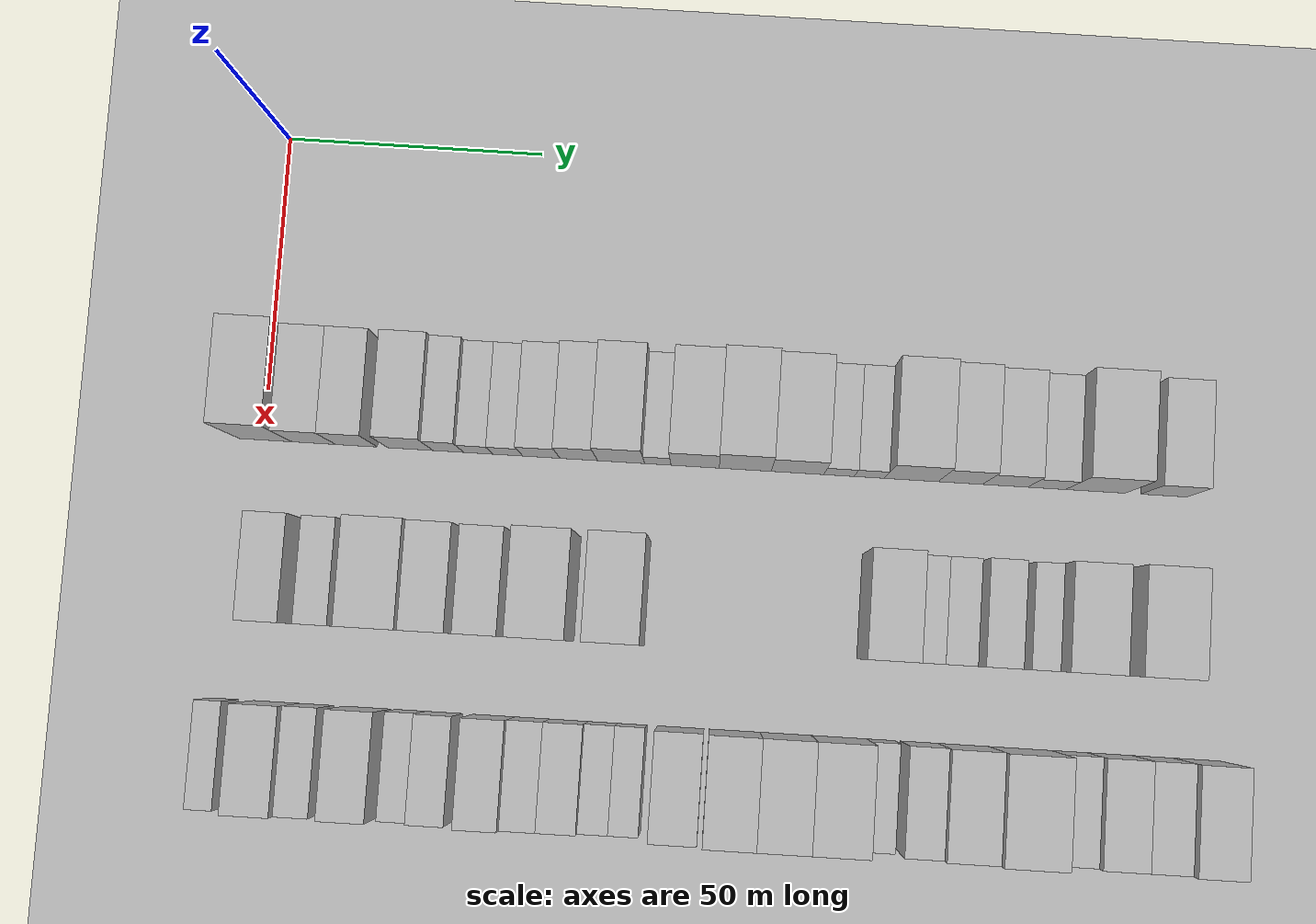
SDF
<sdf version="1.6">
 <world name="default">
  <include><name>ground_plane_1</name><uri>model://HANNAS_ground_plane</uri></include>
  <include>
   <name>ground_plane_2</name>
   <uri>model://HANNAS_ground_plane</uri>
   <pose>100 0 0  0 0 0</pose>
  </include>
  <model name="building_45">
   <static>1</static>
   <pose>50.0000 0.6288 0 0.000000 0.000000 0.000000</pose>
   <link name="link">
    <pose>0 0 12.00 0 0 0</pose>
    <collision name="collision"><geometry><box><size>20.0000 10.2893 24.0000</size></box></geometry></collision>
    <visual name="visual">
     <cast_shadows>0</cast_shadows>
     <geometry><box><size>20.0000 10.2893 24.0000</size></box></geometry>
     <material>
      <script>
       <uri>model://HANNAS_wall/materials/scripts</uri>
       <uri>model://HANNAS_wall/materials/textures</uri>
       <name>vrc/HANNAS_wall</name>
      </script>
     </material>
    </visual>
   </link>
  </model>
  <model name="building_46">
   <static>1</static>
   <pose>50.0000 10.0186 0 0.000000 0.000000 0.000000</pose>
   <link name="link">
    <pose>0 0 9.00 0 0 0</pose>
    <collision name="collision"><geometry><box><size>20.0000 8.4903 18.0000</size></box></geometry></collision>
    <visual name="visual">
     <cast_shadows>0</cast_shadows>
     <geometry><box><size>20.0000 8.4903 18.0000</size></box></geometry>
     <material>
      <script>
       <uri>model://HANNAS_wall/materials/scripts</uri>
       <uri>model://HANNAS_wall/materials/textures</uri>
       <name>vrc/HANNAS_wall</name>
      </script>
     </material>
    </visual>
   </link>
  </model>
  <model name="building_47">
   <static>1</static>
   <pose>50.0000 18.2953 0 0.000000 0.000000 0.000000</pose>
   <link name="link">
    <pose>0 0 9.00 0 0 0</pose>
    <collision name="collision"><geometry><box><size>20.0000 8.0630 18.0000</size></box></geometry></collision>
    <visual name="visual">
     <cast_shadows>0</cast_shadows>
     <geometry><box><size>20.0000 8.0630 18.0000</size></box></geometry>
     <material>
      <script>
       <uri>model://HANNAS_wall/materials/scripts</uri>
       <uri>model://HANNAS_wall/materials/textures</uri>
       <name>vrc/HANNAS_wall</name>
      </script>
     </material>
    </visual>
   </link>
  </model>
  <model name="building_48">
   <static>1</static>
   <pose>50.0000 28.7186 0 0.000000 0.000000 0.000000</pose>
   <link name="link">
    <pose>0 0 9.00 0 0 0</pose>
    <collision name="collision"><geometry><box><size>20.0000 8.7836 18.0000</size></box></geometry></collision>
    <visual name="visual">
     <cast_shadows>0</cast_shadows>
     <geometry><box><size>20.0000 8.7836 18.0000</size></box></geometry>
     <material>
      <script>
       <uri>model://HANNAS_wall/materials/scripts</uri>
       <uri>model://HANNAS_wall/materials/textures</uri>
       <name>vrc/HANNAS_wall</name>
      </script>
     </material>
    </visual>
   </link>
  </model>
  <model name="building_49">
   <static>1</static>
   <pose>50.0000 36.1253 0 0.000000 0.000000 0.000000</pose>
   <link name="link">
    <pose>0 0 7.50 0 0 0</pose>
    <collision name="collision"><geometry><box><size>20.0000 6.0298 15.0000</size></box></geometry></collision>
    <visual name="visual">
     <cast_shadows>0</cast_shadows>
     <geometry><box><size>20.0000 6.0298 15.0000</size></box></geometry>
     <material>
      <script>
       <uri>model://HANNAS_wall/materials/scripts</uri>
       <uri>model://HANNAS_wall/materials/textures</uri>
       <name>vrc/HANNAS_wall</name>
      </script>
     </material>
    </visual>
   </link>
  </model>
  <model name="building_50">
   <static>1</static>
   <pose>50.0000 41.9829 0 0.000000 0.000000 0.000000</pose>
   <link name="link">
    <pose>0 0 6.00 0 0 0</pose>
    <collision name="collision"><geometry><box><size>20.0000 5.6853 12.0000</size></box></geometry></collision>
    <visual name="visual">
     <cast_shadows>0</cast_shadows>
     <geometry><box><size>20.0000 5.6853 12.0000</size></box></geometry>
     <material>
      <script>
       <uri>model://HANNAS_wall/materials/scripts</uri>
       <uri>model://HANNAS_wall/materials/textures</uri>
       <name>vrc/HANNAS_wall</name>
      </script>
     </material>
    </visual>
   </link>
  </model>
  <model name="building_51">
   <static>1</static>
   <pose>50.0000 47.6928 0 0.000000 0.000000 0.000000</pose>
   <link name="link">
    <pose>0 0 6.00 0 0 0</pose>
    <collision name="collision"><geometry><box><size>20.0000 5.7346 12.0000</size></box></geometry></collision>
    <visual name="visual">
     <cast_shadows>0</cast_shadows>
     <geometry><box><size>20.0000 5.7346 12.0000</size></box></geometry>
     <material>
      <script>
       <uri>model://HANNAS_wall/materials/scripts</uri>
       <uri>model://HANNAS_wall/materials/textures</uri>
       <name>vrc/HANNAS_wall</name>
      </script>
     </material>
    </visual>
   </link>
  </model>
  <model name="building_52">
   <static>1</static>
   <pose>50.0000 54.1982 0 0.000000 0.000000 0.000000</pose>
   <link name="link">
    <pose>0 0 7.50 0 0 0</pose>
    <collision name="collision"><geometry><box><size>20.0000 7.2763 15.0000</size></box></geometry></collision>
    <visual name="visual">
     <cast_shadows>0</cast_shadows>
     <geometry><box><size>20.0000 7.2763 15.0000</size></box></geometry>
     <material>
      <script>
       <uri>model://HANNAS_wall/materials/scripts</uri>
       <uri>model://HANNAS_wall/materials/textures</uri>
       <name>vrc/HANNAS_wall</name>
      </script>
     </material>
    </visual>
   </link>
  </model>
  <model name="building_53">
   <static>1</static>
   <pose>50.0000 61.4777 0 0.000000 0.000000 0.000000</pose>
   <link name="link">
    <pose>0 0 9.00 0 0 0</pose>
    <collision name="collision"><geometry><box><size>20.0000 7.2826 18.0000</size></box></geometry></collision>
    <visual name="visual">
     <cast_shadows>0</cast_shadows>
     <geometry><box><size>20.0000 7.2826 18.0000</size></box></geometry>
     <material>
      <script>
       <uri>model://HANNAS_wall/materials/scripts</uri>
       <uri>model://HANNAS_wall/materials/textures</uri>
       <name>vrc/HANNAS_wall</name>
      </script>
     </material>
    </visual>
   </link>
  </model>
  <model name="building_54">
   <static>1</static>
   <pose>50.0000 69.6725 0 0.000000 0.000000 0.000000</pose>
   <link name="link">
    <pose>0 0 10.50 0 0 0</pose>
    <collision name="collision"><geometry><box><size>20.0000 9.1071 21.0000</size></box></geometry></collision>
    <visual name="visual">
     <cast_shadows>0</cast_shadows>
     <geometry><box><size>20.0000 9.1071 21.0000</size></box></geometry>
     <material>
      <script>
       <uri>model://HANNAS_wall/materials/scripts</uri>
       <uri>model://HANNAS_wall/materials/textures</uri>
       <name>vrc/HANNAS_wall</name>
      </script>
     </material>
    </visual>
   </link>
  </model>
  <model name="building_55">
   <static>1</static>
   <pose>50.0000 76.7861 0 0.000000 0.000000 0.000000</pose>
   <link name="link">
    <pose>0 0 6.00 0 0 0</pose>
    <collision name="collision"><geometry><box><size>20.0000 5.1200 12.0000</size></box></geometry></collision>
    <visual name="visual">
     <cast_shadows>0</cast_shadows>
     <geometry><box><size>20.0000 5.1200 12.0000</size></box></geometry>
     <material>
      <script>
       <uri>model://HANNAS_wall/materials/scripts</uri>
       <uri>model://HANNAS_wall/materials/textures</uri>
       <name>vrc/HANNAS_wall</name>
      </script>
     </material>
    </visual>
   </link>
  </model>
  <model name="building_56">
   <static>1</static>
   <pose>50.0000 84.0161 0 0.000000 0.000000 0.000000</pose>
   <link name="link">
    <pose>0 0 10.50 0 0 0</pose>
    <collision name="collision"><geometry><box><size>20.0000 9.3400 21.0000</size></box></geometry></collision>
    <visual name="visual">
     <cast_shadows>0</cast_shadows>
     <geometry><box><size>20.0000 9.3400 21.0000</size></box></geometry>
     <material>
      <script>
       <uri>model://HANNAS_wall/materials/scripts</uri>
       <uri>model://HANNAS_wall/materials/textures</uri>
       <name>vrc/HANNAS_wall</name>
      </script>
     </material>
    </visual>
   </link>
  </model>
  <model name="building_57">
   <static>1</static>
   <pose>50.0000 93.7033 0 0.000000 0.000000 0.000000</pose>
   <link name="link">
    <pose>0 0 12.00 0 0 0</pose>
    <collision name="collision"><geometry><box><size>20.0000 10.0343 24.0000</size></box></geometry></collision>
    <visual name="visual">
     <cast_shadows>0</cast_shadows>
     <geometry><box><size>20.0000 10.0343 24.0000</size></box></geometry>
     <material>
      <script>
       <uri>model://HANNAS_wall/materials/scripts</uri>
       <uri>model://HANNAS_wall/materials/textures</uri>
       <name>vrc/HANNAS_wall</name>
      </script>
     </material>
    </visual>
   </link>
  </model>
  <model name="building_58">
   <static>1</static>
   <pose>50.0000 103.8133 0 0.000000 0.000000 0.000000</pose>
   <link name="link">
    <pose>0 0 10.50 0 0 0</pose>
    <collision name="collision"><geometry><box><size>20.0000 10.1856 21.0000</size></box></geometry></collision>
    <visual name="visual">
     <cast_shadows>0</cast_shadows>
     <geometry><box><size>20.0000 10.1856 21.0000</size></box></geometry>
     <material>
      <script>
       <uri>model://HANNAS_wall/materials/scripts</uri>
       <uri>model://HANNAS_wall/materials/textures</uri>
       <name>vrc/HANNAS_wall</name>
      </script>
     </material>
    </visual>
   </link>
  </model>
  <model name="building_59">
   <static>1</static>
   <pose>50.0000 111.8487 0 0.000000 0.000000 0.000000</pose>
   <link name="link">
    <pose>0 0 6.00 0 0 0</pose>
    <collision name="collision"><geometry><box><size>20.0000 5.8854 12.0000</size></box></geometry></collision>
    <visual name="visual">
     <cast_shadows>0</cast_shadows>
     <geometry><box><size>20.0000 5.8854 12.0000</size></box></geometry>
     <material>
      <script>
       <uri>model://HANNAS_wall/materials/scripts</uri>
       <uri>model://HANNAS_wall/materials/textures</uri>
       <name>vrc/HANNAS_wall</name>
      </script>
     </material>
    </visual>
   </link>
  </model>
  <model name="building_60">
   <static>1</static>
   <pose>50.0000 117.6691 0 0.000000 0.000000 0.000000</pose>
   <link name="link">
    <pose>0 0 6.00 0 0 0</pose>
    <collision name="collision"><geometry><box><size>20.0000 5.7554 12.0000</size></box></geometry></collision>
    <visual name="visual">
     <cast_shadows>0</cast_shadows>
     <geometry><box><size>20.0000 5.7554 12.0000</size></box></geometry>
     <material>
      <script>
       <uri>model://HANNAS_wall/materials/scripts</uri>
       <uri>model://HANNAS_wall/materials/textures</uri>
       <name>vrc/HANNAS_wall</name>
      </script>
     </material>
    </visual>
   </link>
  </model>
  <model name="building_61">
   <static>1</static>
   <pose>50.0000 125.8021 0 0.000000 0.000000 0.000000</pose>
   <link name="link">
    <pose>0 0 12.00 0 0 0</pose>
    <collision name="collision"><geometry><box><size>20.0000 10.5105 24.0000</size></box></geometry></collision>
    <visual name="visual">
     <cast_shadows>0</cast_shadows>
     <geometry><box><size>20.0000 10.5105 24.0000</size></box></geometry>
     <material>
      <script>
       <uri>model://HANNAS_wall/materials/scripts</uri>
       <uri>model://HANNAS_wall/materials/textures</uri>
       <name>vrc/HANNAS_wall</name>
      </script>
     </material>
    </visual>
   </link>
  </model>
  <model name="building_62">
   <static>1</static>
   <pose>50.0000 135.3533 0 0.000000 0.000000 0.000000</pose>
   <link name="link">
    <pose>0 0 10.50 0 0 0</pose>
    <collision name="collision"><geometry><box><size>20.0000 8.5919 21.0000</size></box></geometry></collision>
    <visual name="visual">
     <cast_shadows>0</cast_shadows>
     <geometry><box><size>20.0000 8.5919 21.0000</size></box></geometry>
     <material>
      <script>
       <uri>model://HANNAS_wall/materials/scripts</uri>
       <uri>model://HANNAS_wall/materials/textures</uri>
       <name>vrc/HANNAS_wall</name>
      </script>
     </material>
    </visual>
   </link>
  </model>
  <model name="building_63">
   <static>1</static>
   <pose>50.0000 144.0137 0 0.000000 0.000000 0.000000</pose>
   <link name="link">
    <pose>0 0 9.00 0 0 0</pose>
    <collision name="collision"><geometry><box><size>20.0000 8.7290 18.0000</size></box></geometry></collision>
    <visual name="visual">
     <cast_shadows>0</cast_shadows>
     <geometry><box><size>20.0000 8.7290 18.0000</size></box></geometry>
     <material>
      <script>
       <uri>model://HANNAS_wall/materials/scripts</uri>
       <uri>model://HANNAS_wall/materials/textures</uri>
       <name>vrc/HANNAS_wall</name>
      </script>
     </material>
    </visual>
   </link>
  </model>
  <model name="building_64">
   <static>1</static>
   <pose>50.0000 152.0452 0 0.000000 0.000000 0.000000</pose>
   <link name="link">
    <pose>0 0 7.50 0 0 0</pose>
    <collision name="collision"><geometry><box><size>20.0000 7.3339 15.0000</size></box></geometry></collision>
    <visual name="visual">
     <cast_shadows>0</cast_shadows>
     <geometry><box><size>20.0000 7.3339 15.0000</size></box></geometry>
     <material>
      <script>
       <uri>model://HANNAS_wall/materials/scripts</uri>
       <uri>model://HANNAS_wall/materials/textures</uri>
       <name>vrc/HANNAS_wall</name>
      </script>
     </material>
    </visual>
   </link>
  </model>
  <model name="building_65">
   <static>1</static>
   <pose>50.0000 161.4899 0 0.000000 0.000000 0.000000</pose>
   <link name="link">
    <pose>0 0 12.00 0 0 0</pose>
    <collision name="collision"><geometry><box><size>20.0000 11.5554 24.0000</size></box></geometry></collision>
    <visual name="visual">
     <cast_shadows>0</cast_shadows>
     <geometry><box><size>20.0000 11.5554 24.0000</size></box></geometry>
     <material>
      <script>
       <uri>model://HANNAS_wall/materials/scripts</uri>
       <uri>model://HANNAS_wall/materials/textures</uri>
       <name>vrc/HANNAS_wall</name>
      </script>
     </material>
    </visual>
   </link>
  </model>
  <model name="building_66">
   <static>1</static>
   <pose>50.0000 174.6841 0 0.000000 0.000000 0.000000</pose>
   <link name="link">
    <pose>0 0 9.00 0 0 0</pose>
    <collision name="collision"><geometry><box><size>20.0000 8.8332 18.0000</size></box></geometry></collision>
    <visual name="visual">
     <cast_shadows>0</cast_shadows>
     <geometry><box><size>20.0000 8.8332 18.0000</size></box></geometry>
     <material>
      <script>
       <uri>model://HANNAS_wall/materials/scripts</uri>
       <uri>model://HANNAS_wall/materials/textures</uri>
       <name>vrc/HANNAS_wall</name>
      </script>
     </material>
    </visual>
   </link>
  </model>
  <model name="building_127">
   <static>1</static>
   <pose>85.0000 6.2034 0 0.000000 0.000000 0.000000</pose>
   <link name="link">
    <pose>0 0 9.00 0 0 0</pose>
    <collision name="collision"><geometry><box><size>20.0000 8.0025 18.0000</size></box></geometry></collision>
    <visual name="visual">
     <cast_shadows>0</cast_shadows>
     <geometry><box><size>20.0000 8.0025 18.0000</size></box></geometry>
     <material>
      <script>
       <uri>model://HANNAS_wall/materials/scripts</uri>
       <uri>model://HANNAS_wall/materials/textures</uri>
       <name>vrc/HANNAS_wall</name>
      </script>
     </material>
    </visual>
   </link>
  </model>
  <model name="building_128">
   <static>1</static>
   <pose>85.0000 15.3976 0 0.000000 0.000000 0.000000</pose>
   <link name="link">
    <pose>0 0 7.50 0 0 0</pose>
    <collision name="collision"><geometry><box><size>20.0000 6.3859 15.0000</size></box></geometry></collision>
    <visual name="visual">
     <cast_shadows>0</cast_shadows>
     <geometry><box><size>20.0000 6.3859 15.0000</size></box></geometry>
     <material>
      <script>
       <uri>model://HANNAS_wall/materials/scripts</uri>
       <uri>model://HANNAS_wall/materials/textures</uri>
       <name>vrc/HANNAS_wall</name>
      </script>
     </material>
    </visual>
   </link>
  </model>
  <model name="building_129">
   <static>1</static>
   <pose>85.0000 27.0782 0 0.000000 0.000000 0.000000</pose>
   <link name="link">
    <pose>0 0 12.00 0 0 0</pose>
    <collision name="collision"><geometry><box><size>20.0000 10.9752 24.0000</size></box></geometry></collision>
    <visual name="visual">
     <cast_shadows>0</cast_shadows>
     <geometry><box><size>20.0000 10.9752 24.0000</size></box></geometry>
     <material>
      <script>
       <uri>model://HANNAS_wall/materials/scripts</uri>
       <uri>model://HANNAS_wall/materials/textures</uri>
       <name>vrc/HANNAS_wall</name>
      </script>
     </material>
    </visual>
   </link>
  </model>
  <model name="building_130">
   <static>1</static>
   <pose>85.0000 36.7725 0 0.000000 0.000000 0.000000</pose>
   <link name="link">
    <pose>0 0 10.50 0 0 0</pose>
    <collision name="collision"><geometry><box><size>20.0000 8.4135 21.0000</size></box></geometry></collision>
    <visual name="visual">
     <cast_shadows>0</cast_shadows>
     <geometry><box><size>20.0000 8.4135 21.0000</size></box></geometry>
     <material>
      <script>
       <uri>model://HANNAS_wall/materials/scripts</uri>
       <uri>model://HANNAS_wall/materials/textures</uri>
       <name>vrc/HANNAS_wall</name>
      </script>
     </material>
    </visual>
   </link>
  </model>
  <model name="building_131">
   <static>1</static>
   <pose>85.0000 46.0508 0 0.000000 0.000000 0.000000</pose>
   <link name="link">
    <pose>0 0 9.00 0 0 0</pose>
    <collision name="collision"><geometry><box><size>20.0000 8.1430 18.0000</size></box></geometry></collision>
    <visual name="visual">
     <cast_shadows>0</cast_shadows>
     <geometry><box><size>20.0000 8.1430 18.0000</size></box></geometry>
     <material>
      <script>
       <uri>model://HANNAS_wall/materials/scripts</uri>
       <uri>model://HANNAS_wall/materials/textures</uri>
       <name>vrc/HANNAS_wall</name>
      </script>
     </material>
    </visual>
   </link>
  </model>
  <model name="building_132">
   <static>1</static>
   <pose>85.0000 57.5286 0 0.000000 0.000000 0.000000</pose>
   <link name="link">
    <pose>0 0 12.00 0 0 0</pose>
    <collision name="collision"><geometry><box><size>20.0000 10.8127 24.0000</size></box></geometry></collision>
    <visual name="visual">
     <cast_shadows>0</cast_shadows>
     <geometry><box><size>20.0000 10.8127 24.0000</size></box></geometry>
     <material>
      <script>
       <uri>model://HANNAS_wall/materials/scripts</uri>
       <uri>model://HANNAS_wall/materials/textures</uri>
       <name>vrc/HANNAS_wall</name>
      </script>
     </material>
    </visual>
   </link>
  </model>
  <model name="building_133">
   <static>1</static>
   <pose>85.0000 71.1728 0 0.000000 0.000000 0.000000</pose>
   <link name="link">
    <pose>0 0 12.00 0 0 0</pose>
    <collision name="collision"><geometry><box><size>20.0000 10.4758 24.0000</size></box></geometry></collision>
    <visual name="visual">
     <cast_shadows>0</cast_shadows>
     <geometry><box><size>20.0000 10.4758 24.0000</size></box></geometry>
     <material>
      <script>
       <uri>model://HANNAS_wall/materials/scripts</uri>
       <uri>model://HANNAS_wall/materials/textures</uri>
       <name>vrc/HANNAS_wall</name>
      </script>
     </material>
    </visual>
   </link>
  </model>
  <model name="building_134">
   <static>1</static>
   <pose>85.0000 122.0404 0 0.000000 0.000000 0.000000</pose>
   <link name="link">
    <pose>0 0 12.00 0 0 0</pose>
    <collision name="collision"><geometry><box><size>20.0000 9.7531 24.0000</size></box></geometry></collision>
    <visual name="visual">
     <cast_shadows>0</cast_shadows>
     <geometry><box><size>20.0000 9.7531 24.0000</size></box></geometry>
     <material>
      <script>
       <uri>model://HANNAS_wall/materials/scripts</uri>
       <uri>model://HANNAS_wall/materials/textures</uri>
       <name>vrc/HANNAS_wall</name>
      </script>
     </material>
    </visual>
   </link>
  </model>
  <model name="building_135">
   <static>1</static>
   <pose>85.0000 129.8178 0 0.000000 0.000000 0.000000</pose>
   <link name="link">
    <pose>0 0 6.00 0 0 0</pose>
    <collision name="collision"><geometry><box><size>20.0000 5.8017 12.0000</size></box></geometry></collision>
    <visual name="visual">
     <cast_shadows>0</cast_shadows>
     <geometry><box><size>20.0000 5.8017 12.0000</size></box></geometry>
     <material>
      <script>
       <uri>model://HANNAS_wall/materials/scripts</uri>
       <uri>model://HANNAS_wall/materials/textures</uri>
       <name>vrc/HANNAS_wall</name>
      </script>
     </material>
    </visual>
   </link>
  </model>
  <model name="building_136">
   <static>1</static>
   <pose>85.0000 135.7132 0 0.000000 0.000000 0.000000</pose>
   <link name="link">
    <pose>0 0 6.00 0 0 0</pose>
    <collision name="collision"><geometry><box><size>20.0000 5.9890 12.0000</size></box></geometry></collision>
    <visual name="visual">
     <cast_shadows>0</cast_shadows>
     <geometry><box><size>20.0000 5.9890 12.0000</size></box></geometry>
     <material>
      <script>
       <uri>model://HANNAS_wall/materials/scripts</uri>
       <uri>model://HANNAS_wall/materials/textures</uri>
       <name>vrc/HANNAS_wall</name>
      </script>
     </material>
    </visual>
   </link>
  </model>
  <model name="building_137">
   <static>1</static>
   <pose>85.0000 143.1689 0 0.000000 0.000000 0.000000</pose>
   <link name="link">
    <pose>0 0 7.50 0 0 0</pose>
    <collision name="collision"><geometry><box><size>20.0000 6.9223 15.0000</size></box></geometry></collision>
    <visual name="visual">
     <cast_shadows>0</cast_shadows>
     <geometry><box><size>20.0000 6.9223 15.0000</size></box></geometry>
     <material>
      <script>
       <uri>model://HANNAS_wall/materials/scripts</uri>
       <uri>model://HANNAS_wall/materials/textures</uri>
       <name>vrc/HANNAS_wall</name>
      </script>
     </material>
    </visual>
   </link>
  </model>
  <model name="building_138">
   <static>1</static>
   <pose>85.0000 151.2953 0 0.000000 0.000000 0.000000</pose>
   <link name="link">
    <pose>0 0 6.00 0 0 0</pose>
    <collision name="collision"><geometry><box><size>20.0000 5.3306 12.0000</size></box></geometry></collision>
    <visual name="visual">
     <cast_shadows>0</cast_shadows>
     <geometry><box><size>20.0000 5.3306 12.0000</size></box></geometry>
     <material>
      <script>
       <uri>model://HANNAS_wall/materials/scripts</uri>
       <uri>model://HANNAS_wall/materials/textures</uri>
       <name>vrc/HANNAS_wall</name>
      </script>
     </material>
    </visual>
   </link>
  </model>
  <model name="building_139">
   <static>1</static>
   <pose>85.0000 159.2022 0 0.000000 0.000000 0.000000</pose>
   <link name="link">
    <pose>0 0 10.50 0 0 0</pose>
    <collision name="collision"><geometry><box><size>20.0000 10.4831 21.0000</size></box></geometry></collision>
    <visual name="visual">
     <cast_shadows>0</cast_shadows>
     <geometry><box><size>20.0000 10.4831 21.0000</size></box></geometry>
     <material>
      <script>
       <uri>model://HANNAS_wall/materials/scripts</uri>
       <uri>model://HANNAS_wall/materials/textures</uri>
       <name>vrc/HANNAS_wall</name>
      </script>
     </material>
    </visual>
   </link>
  </model>
  <model name="building_140">
   <static>1</static>
   <pose>85.0000 172.1269 0 0.000000 0.000000 0.000000</pose>
   <link name="link">
    <pose>0 0 12.00 0 0 0</pose>
    <collision name="collision"><geometry><box><size>20.0000 11.3663 24.0000</size></box></geometry></collision>
    <visual name="visual">
     <cast_shadows>0</cast_shadows>
     <geometry><box><size>20.0000 11.3663 24.0000</size></box></geometry>
     <material>
      <script>
       <uri>model://HANNAS_wall/materials/scripts</uri>
       <uri>model://HANNAS_wall/materials/textures</uri>
       <name>vrc/HANNAS_wall</name>
      </script>
     </material>
    </visual>
   </link>
  </model>
  <model name="building_196">
   <static>1</static>
   <pose>120.0000 -2.8395 0 0.000000 0.000000 0.000000</pose>
   <link name="link">
    <pose>0 0 6.00 0 0 0</pose>
    <collision name="collision"><geometry><box><size>20.0000 5.1345 12.0000</size></box></geometry></collision>
    <visual name="visual">
     <cast_shadows>0</cast_shadows>
     <geometry><box><size>20.0000 5.1345 12.0000</size></box></geometry>
     <material>
      <script>
       <uri>model://HANNAS_wall/materials/scripts</uri>
       <uri>model://HANNAS_wall/materials/textures</uri>
       <name>vrc/HANNAS_wall</name>
      </script>
     </material>
    </visual>
   </link>
  </model>
  <model name="building_197">
   <static>1</static>
   <pose>120.0000 7.2102 0 0.000000 0.000000 0.000000</pose>
   <link name="link">
    <pose>0 0 9.00 0 0 0</pose>
    <collision name="collision"><geometry><box><size>20.0000 8.9649 18.0000</size></box></geometry></collision>
    <visual name="visual">
     <cast_shadows>0</cast_shadows>
     <geometry><box><size>20.0000 8.9649 18.0000</size></box></geometry>
     <material>
      <script>
       <uri>model://HANNAS_wall/materials/scripts</uri>
       <uri>model://HANNAS_wall/materials/textures</uri>
       <name>vrc/HANNAS_wall</name>
      </script>
     </material>
    </visual>
   </link>
  </model>
  <model name="building_198">
   <static>1</static>
   <pose>120.0000 14.9015 0 0.000000 0.000000 0.000000</pose>
   <link name="link">
    <pose>0 0 7.50 0 0 0</pose>
    <collision name="collision"><geometry><box><size>20.0000 6.4176 15.0000</size></box></geometry></collision>
    <visual name="visual">
     <cast_shadows>0</cast_shadows>
     <geometry><box><size>20.0000 6.4176 15.0000</size></box></geometry>
     <material>
      <script>
       <uri>model://HANNAS_wall/materials/scripts</uri>
       <uri>model://HANNAS_wall/materials/textures</uri>
       <name>vrc/HANNAS_wall</name>
      </script>
     </material>
    </visual>
   </link>
  </model>
  <model name="building_199">
   <static>1</static>
   <pose>120.0000 24.5177 0 0.000000 0.000000 0.000000</pose>
   <link name="link">
    <pose>0 0 9.00 0 0 0</pose>
    <collision name="collision"><geometry><box><size>20.0000 8.8148 18.0000</size></box></geometry></collision>
    <visual name="visual">
     <cast_shadows>0</cast_shadows>
     <geometry><box><size>20.0000 8.8148 18.0000</size></box></geometry>
     <material>
      <script>
       <uri>model://HANNAS_wall/materials/scripts</uri>
       <uri>model://HANNAS_wall/materials/textures</uri>
       <name>vrc/HANNAS_wall</name>
      </script>
     </material>
    </visual>
   </link>
  </model>
  <model name="building_200">
   <static>1</static>
   <pose>120.0000 32.8219 0 0.000000 0.000000 0.000000</pose>
   <link name="link">
    <pose>0 0 6.00 0 0 0</pose>
    <collision name="collision"><geometry><box><size>20.0000 5.7936 12.0000</size></box></geometry></collision>
    <visual name="visual">
     <cast_shadows>0</cast_shadows>
     <geometry><box><size>20.0000 5.7936 12.0000</size></box></geometry>
     <material>
      <script>
       <uri>model://HANNAS_wall/materials/scripts</uri>
       <uri>model://HANNAS_wall/materials/textures</uri>
       <name>vrc/HANNAS_wall</name>
      </script>
     </material>
    </visual>
   </link>
  </model>
  <model name="building_201">
   <static>1</static>
   <pose>120.0000 39.2306 0 0.000000 0.000000 0.000000</pose>
   <link name="link">
    <pose>0 0 7.50 0 0 0</pose>
    <collision name="collision"><geometry><box><size>20.0000 7.0238 15.0000</size></box></geometry></collision>
    <visual name="visual">
     <cast_shadows>0</cast_shadows>
     <geometry><box><size>20.0000 7.0238 15.0000</size></box></geometry>
     <material>
      <script>
       <uri>model://HANNAS_wall/materials/scripts</uri>
       <uri>model://HANNAS_wall/materials/textures</uri>
       <name>vrc/HANNAS_wall</name>
      </script>
     </material>
    </visual>
   </link>
  </model>
  <model name="building_202">
   <static>1</static>
   <pose>120.0000 48.7671 0 0.000000 0.000000 0.000000</pose>
   <link name="link">
    <pose>0 0 9.00 0 0 0</pose>
    <collision name="collision"><geometry><box><size>20.0000 8.0491 18.0000</size></box></geometry></collision>
    <visual name="visual">
     <cast_shadows>0</cast_shadows>
     <geometry><box><size>20.0000 8.0491 18.0000</size></box></geometry>
     <material>
      <script>
       <uri>model://HANNAS_wall/materials/scripts</uri>
       <uri>model://HANNAS_wall/materials/textures</uri>
       <name>vrc/HANNAS_wall</name>
      </script>
     </material>
    </visual>
   </link>
  </model>
  <model name="building_203">
   <static>1</static>
   <pose>120.0000 56.1058 0 0.000000 0.000000 0.000000</pose>
   <link name="link">
    <pose>0 0 7.50 0 0 0</pose>
    <collision name="collision"><geometry><box><size>20.0000 6.6284 15.0000</size></box></geometry></collision>
    <visual name="visual">
     <cast_shadows>0</cast_shadows>
     <geometry><box><size>20.0000 6.6284 15.0000</size></box></geometry>
     <material>
      <script>
       <uri>model://HANNAS_wall/materials/scripts</uri>
       <uri>model://HANNAS_wall/materials/textures</uri>
       <name>vrc/HANNAS_wall</name>
      </script>
     </material>
    </visual>
   </link>
  </model>
  <model name="building_204">
   <static>1</static>
   <pose>120.0000 63.0989 0 0.000000 0.000000 0.000000</pose>
   <link name="link">
    <pose>0 0 7.50 0 0 0</pose>
    <collision name="collision"><geometry><box><size>20.0000 7.3579 15.0000</size></box></geometry></collision>
    <visual name="visual">
     <cast_shadows>0</cast_shadows>
     <geometry><box><size>20.0000 7.3579 15.0000</size></box></geometry>
     <material>
      <script>
       <uri>model://HANNAS_wall/materials/scripts</uri>
       <uri>model://HANNAS_wall/materials/textures</uri>
       <name>vrc/HANNAS_wall</name>
      </script>
     </material>
    </visual>
   </link>
  </model>
  <model name="building_205">
   <static>1</static>
   <pose>120.0000 69.5980 0 0.000000 0.000000 0.000000</pose>
   <link name="link">
    <pose>0 0 6.00 0 0 0</pose>
    <collision name="collision"><geometry><box><size>20.0000 5.6403 12.0000</size></box></geometry></collision>
    <visual name="visual">
     <cast_shadows>0</cast_shadows>
     <geometry><box><size>20.0000 5.6403 12.0000</size></box></geometry>
     <material>
      <script>
       <uri>model://HANNAS_wall/materials/scripts</uri>
       <uri>model://HANNAS_wall/materials/textures</uri>
       <name>vrc/HANNAS_wall</name>
      </script>
     </material>
    </visual>
   </link>
  </model>
  <model name="building_206">
   <static>1</static>
   <pose>120.0000 75.2221 0 0.000000 0.000000 0.000000</pose>
   <link name="link">
    <pose>0 0 6.00 0 0 0</pose>
    <collision name="collision"><geometry><box><size>20.0000 5.6078 12.0000</size></box></geometry></collision>
    <visual name="visual">
     <cast_shadows>0</cast_shadows>
     <geometry><box><size>20.0000 5.6078 12.0000</size></box></geometry>
     <material>
      <script>
       <uri>model://HANNAS_wall/materials/scripts</uri>
       <uri>model://HANNAS_wall/materials/textures</uri>
       <name>vrc/HANNAS_wall</name>
      </script>
     </material>
    </visual>
   </link>
  </model>
  <model name="building_207">
   <static>1</static>
   <pose>120.0000 84.4294 0 0.000000 0.000000 0.000000</pose>
   <link name="link">
    <pose>0 0 10.50 0 0 0</pose>
    <collision name="collision"><geometry><box><size>20.0000 8.8069 21.0000</size></box></geometry></collision>
    <visual name="visual">
     <cast_shadows>0</cast_shadows>
     <geometry><box><size>20.0000 8.8069 21.0000</size></box></geometry>
     <material>
      <script>
       <uri>model://HANNAS_wall/materials/scripts</uri>
       <uri>model://HANNAS_wall/materials/textures</uri>
       <name>vrc/HANNAS_wall</name>
      </script>
     </material>
    </visual>
   </link>
  </model>
  <model name="building_208">
   <static>1</static>
   <pose>120.0000 94.6485 0 0.000000 0.000000 0.000000</pose>
   <link name="link">
    <pose>0 0 12.00 0 0 0</pose>
    <collision name="collision"><geometry><box><size>20.0000 9.6313 24.0000</size></box></geometry></collision>
    <visual name="visual">
     <cast_shadows>0</cast_shadows>
     <geometry><box><size>20.0000 9.6313 24.0000</size></box></geometry>
     <material>
      <script>
       <uri>model://HANNAS_wall/materials/scripts</uri>
       <uri>model://HANNAS_wall/materials/textures</uri>
       <name>vrc/HANNAS_wall</name>
      </script>
     </material>
    </visual>
   </link>
  </model>
  <model name="building_209">
   <static>1</static>
   <pose>120.0000 104.3690 0 0.000000 0.000000 0.000000</pose>
   <link name="link">
    <pose>0 0 12.00 0 0 0</pose>
    <collision name="collision"><geometry><box><size>20.0000 9.8098 24.0000</size></box></geometry></collision>
    <visual name="visual">
     <cast_shadows>0</cast_shadows>
     <geometry><box><size>20.0000 9.8098 24.0000</size></box></geometry>
     <material>
      <script>
       <uri>model://HANNAS_wall/materials/scripts</uri>
       <uri>model://HANNAS_wall/materials/textures</uri>
       <name>vrc/HANNAS_wall</name>
      </script>
     </material>
    </visual>
   </link>
  </model>
  <model name="building_210">
   <static>1</static>
   <pose>120.0000 114.5601 0 0.000000 0.000000 0.000000</pose>
   <link name="link">
    <pose>0 0 12.00 0 0 0</pose>
    <collision name="collision"><geometry><box><size>20.0000 10.5722 24.0000</size></box></geometry></collision>
    <visual name="visual">
     <cast_shadows>0</cast_shadows>
     <geometry><box><size>20.0000 10.5722 24.0000</size></box></geometry>
     <material>
      <script>
       <uri>model://HANNAS_wall/materials/scripts</uri>
       <uri>model://HANNAS_wall/materials/textures</uri>
       <name>vrc/HANNAS_wall</name>
      </script>
     </material>
    </visual>
   </link>
  </model>
  <model name="building_211">
   <static>1</static>
   <pose>120.0000 122.5188 0 0.000000 0.000000 0.000000</pose>
   <link name="link">
    <pose>0 0 6.00 0 0 0</pose>
    <collision name="collision"><geometry><box><size>20.0000 5.3452 12.0000</size></box></geometry></collision>
    <visual name="visual">
     <cast_shadows>0</cast_shadows>
     <geometry><box><size>20.0000 5.3452 12.0000</size></box></geometry>
     <material>
      <script>
       <uri>model://HANNAS_wall/materials/scripts</uri>
       <uri>model://HANNAS_wall/materials/textures</uri>
       <name>vrc/HANNAS_wall</name>
      </script>
     </material>
    </visual>
   </link>
  </model>
  <model name="building_212">
   <static>1</static>
   <pose>120.0000 129.7966 0 0.000000 0.000000 0.000000</pose>
   <link name="link">
    <pose>0 0 9.00 0 0 0</pose>
    <collision name="collision"><geometry><box><size>20.0000 7.2104 18.0000</size></box></geometry></collision>
    <visual name="visual">
     <cast_shadows>0</cast_shadows>
     <geometry><box><size>20.0000 7.2104 18.0000</size></box></geometry>
     <material>
      <script>
       <uri>model://HANNAS_wall/materials/scripts</uri>
       <uri>model://HANNAS_wall/materials/textures</uri>
       <name>vrc/HANNAS_wall</name>
      </script>
     </material>
    </visual>
   </link>
  </model>
  <model name="building_213">
   <static>1</static>
   <pose>120.0000 138.2559 0 0.000000 0.000000 0.000000</pose>
   <link name="link">
    <pose>0 0 10.50 0 0 0</pose>
    <collision name="collision"><geometry><box><size>20.0000 9.7082 21.0000</size></box></geometry></collision>
    <visual name="visual">
     <cast_shadows>0</cast_shadows>
     <geometry><box><size>20.0000 9.7082 21.0000</size></box></geometry>
     <material>
      <script>
       <uri>model://HANNAS_wall/materials/scripts</uri>
       <uri>model://HANNAS_wall/materials/textures</uri>
       <name>vrc/HANNAS_wall</name>
      </script>
     </material>
    </visual>
   </link>
  </model>
  <model name="building_214">
   <static>1</static>
   <pose>120.0000 148.9978 0 0.000000 0.000000 0.000000</pose>
   <link name="link">
    <pose>0 0 12.00 0 0 0</pose>
    <collision name="collision"><geometry><box><size>20.0000 11.7756 24.0000</size></box></geometry></collision>
    <visual name="visual">
     <cast_shadows>0</cast_shadows>
     <geometry><box><size>20.0000 11.7756 24.0000</size></box></geometry>
     <material>
      <script>
       <uri>model://HANNAS_wall/materials/scripts</uri>
       <uri>model://HANNAS_wall/materials/textures</uri>
       <name>vrc/HANNAS_wall</name>
      </script>
     </material>
    </visual>
   </link>
  </model>
  <model name="building_215">
   <static>1</static>
   <pose>120.0000 158.3472 0 0.000000 0.000000 0.000000</pose>
   <link name="link">
    <pose>0 0 7.50 0 0 0</pose>
    <collision name="collision"><geometry><box><size>20.0000 6.9230 15.0000</size></box></geometry></collision>
    <visual name="visual">
     <cast_shadows>0</cast_shadows>
     <geometry><box><size>20.0000 6.9230 15.0000</size></box></geometry>
     <material>
      <script>
       <uri>model://HANNAS_wall/materials/scripts</uri>
       <uri>model://HANNAS_wall/materials/textures</uri>
       <name>vrc/HANNAS_wall</name>
      </script>
     </material>
    </visual>
   </link>
  </model>
  <model name="building_216">
   <static>1</static>
   <pose>120.0000 166.1055 0 0.000000 0.000000 0.000000</pose>
   <link name="link">
    <pose>0 0 9.00 0 0 0</pose>
    <collision name="collision"><geometry><box><size>20.0000 8.5936 18.0000</size></box></geometry></collision>
    <visual name="visual">
     <cast_shadows>0</cast_shadows>
     <geometry><box><size>20.0000 8.5936 18.0000</size></box></geometry>
     <material>
      <script>
       <uri>model://HANNAS_wall/materials/scripts</uri>
       <uri>model://HANNAS_wall/materials/textures</uri>
       <name>vrc/HANNAS_wall</name>
      </script>
     </material>
    </visual>
   </link>
  </model>
  <model name="building_217">
   <static>1</static>
   <pose>120.0000 174.2232 0 0.000000 0.000000 0.000000</pose>
   <link name="link">
    <pose>0 0 9.00 0 0 0</pose>
    <collision name="collision"><geometry><box><size>20.0000 7.6419 18.0000</size></box></geometry></collision>
    <visual name="visual">
     <cast_shadows>0</cast_shadows>
     <geometry><box><size>20.0000 7.6419 18.0000</size></box></geometry>
     <material>
      <script>
       <uri>model://HANNAS_wall/materials/scripts</uri>
       <uri>model://HANNAS_wall/materials/textures</uri>
       <name>vrc/HANNAS_wall</name>
      </script>
     </material>
    </visual>
   </link>
  </model>
  <model name="building_218">
   <static>1</static>
   <pose>120.0000 182.6348 0 0.000000 0.000000 0.000000</pose>
   <link name="link">
    <pose>0 0 10.50 0 0 0</pose>
    <collision name="collision"><geometry><box><size>20.0000 9.1812 21.0000</size></box></geometry></collision>
    <visual name="visual">
     <cast_shadows>0</cast_shadows>
     <geometry><box><size>20.0000 9.1812 21.0000</size></box></geometry>
     <material>
      <script>
       <uri>model://HANNAS_wall/materials/scripts</uri>
       <uri>model://HANNAS_wall/materials/textures</uri>
       <name>vrc/HANNAS_wall</name>
      </script>
     </material>
    </visual>
   </link>
  </model>
 </world>
</sdf>
